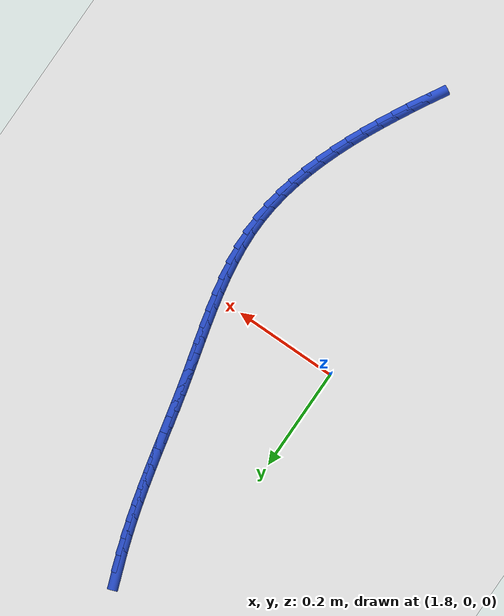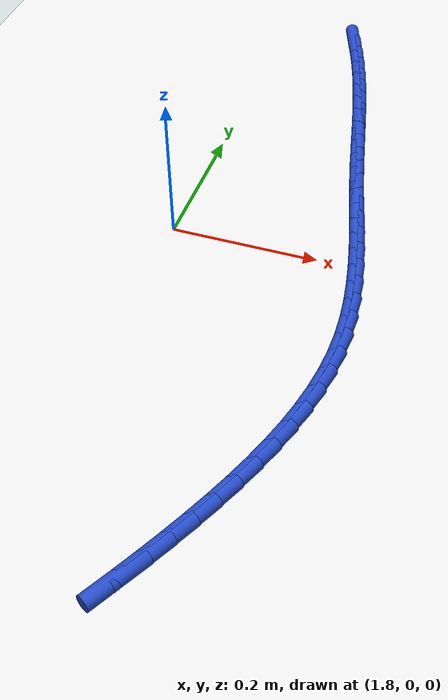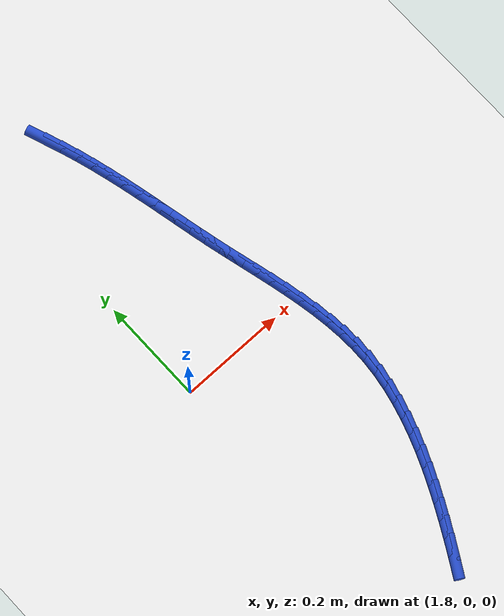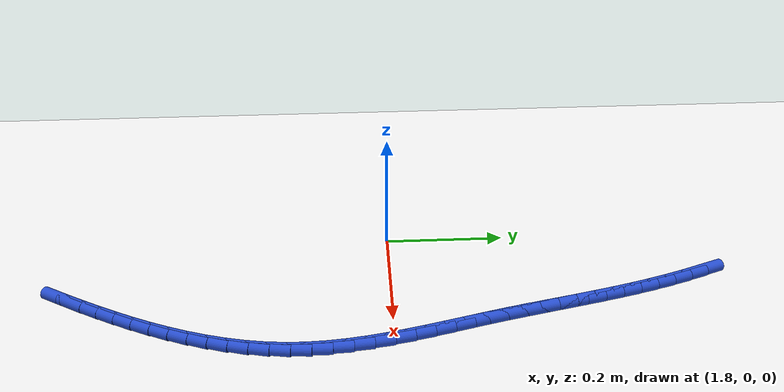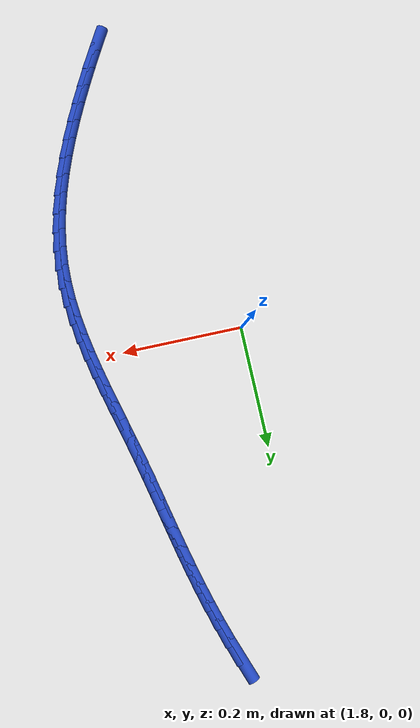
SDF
<sdf version="1.6">
 <world name="default">
  <model name="ground_plane">
   <static>1</static>
   <link name="link">
    <collision name="collision">
     <geometry><plane><normal>0 0 1</normal><size>100 100</size></plane></geometry>
     <surface><friction><ode><mu>100</mu><mu2>50</mu2></ode></friction></surface>
    </collision>
    <visual name="visual">
     <cast_shadows>0</cast_shadows>
     <geometry><plane><normal>0 0 1</normal><size>100 100</size></plane></geometry>
     <material>
      <script><uri>file://media/materials/scripts/gazebo.material</uri><name>Gazebo/WhiteGlow</name></script>
     </material>
    </visual>
   </link>
  </model>
  <model name="line">
   <link name="link_87">
    <pose>1.9185754903380825 0.511030439773325 0.01 0 1.57 -1.2209165980554624</pose>
    <collision name="collision">
     <geometry><cylinder><radius>0.01</radius><length>0.08</length></cylinder></geometry>
    </collision>
    <visual name="visual">
     <material>
      <script><name>Gazebo/Blue</name><uri>file://media/materials/scripts/gazebo.material</uri></script>
     </material>
     <geometry><cylinder><radius>0.01</radius><length>0.08</length></cylinder></geometry>
    </visual>
   </link>
   <link name="link_88">
    <pose>1.9296152009178051 0.48077572218450754 0.01 0 1.57 -1.249173526490332</pose>
    <collision name="collision">
     <geometry><cylinder><radius>0.01</radius><length>0.08</length></cylinder></geometry>
    </collision>
    <visual name="visual">
     <material>
      <script><name>Gazebo/Blue</name><uri>file://media/materials/scripts/gazebo.material</uri></script>
     </material>
     <geometry><cylinder><radius>0.01</radius><length>0.08</length></cylinder></geometry>
    </visual>
   </link>
   <link name="link_89">
    <pose>1.9397411730775054 0.45038486440162623 0.01 0 1.57 -1.2750592778368581</pose>
    <collision name="collision">
     <geometry><cylinder><radius>0.01</radius><length>0.08</length></cylinder></geometry>
    </collision>
    <visual name="visual">
     <material>
      <script><name>Gazebo/Blue</name><uri>file://media/materials/scripts/gazebo.material</uri></script>
     </material>
     <geometry><cylinder><radius>0.01</radius><length>0.08</length></cylinder></geometry>
    </visual>
   </link>
   <link name="link_90">
    <pose>1.9490035571342983 0.41998364892661677 0.01 0 1.57 -1.297681552744192</pose>
    <collision name="collision">
     <geometry><cylinder><radius>0.01</radius><length>0.08</length></cylinder></geometry>
    </collision>
    <visual name="visual">
     <material>
      <script><name>Gazebo/Blue</name><uri>file://media/materials/scripts/gazebo.material</uri></script>
     </material>
     <geometry><cylinder><radius>0.01</radius><length>0.08</length></cylinder></geometry>
    </visual>
   </link>
   <link name="link_91">
    <pose>1.957512859859941 0.38960569256472355 0.01 0 1.57 -1.3163729624620106</pose>
    <collision name="collision">
     <geometry><cylinder><radius>0.01</radius><length>0.08</length></cylinder></geometry>
    </collision>
    <visual name="visual">
     <material>
      <script><name>Gazebo/Blue</name><uri>file://media/materials/scripts/gazebo.material</uri></script>
     </material>
     <geometry><cylinder><radius>0.01</radius><length>0.08</length></cylinder></geometry>
    </visual>
   </link>
   <link name="link_92">
    <pose>1.9654103453046323 0.3592376450484434 0.01 0 1.57 -1.3309617567709409</pose>
    <collision name="collision">
     <geometry><cylinder><radius>0.01</radius><length>0.08</length></cylinder></geometry>
    </collision>
    <visual name="visual">
     <material>
      <script><name>Gazebo/Blue</name><uri>file://media/materials/scripts/gazebo.material</uri></script>
     </material>
     <geometry><cylinder><radius>0.01</radius><length>0.08</length></cylinder></geometry>
    </visual>
   </link>
   <link name="link_93">
    <pose>1.9728375223183114 0.3288657822954265 0.01 0 1.57 -1.3413298237848734</pose>
    <collision name="collision">
     <geometry><cylinder><radius>0.01</radius><length>0.08</length></cylinder></geometry>
    </collision>
    <visual name="visual">
     <material>
      <script><name>Gazebo/Blue</name><uri>file://media/materials/scripts/gazebo.material</uri></script>
     </material>
     <geometry><cylinder><radius>0.01</radius><length>0.08</length></cylinder></geometry>
    </visual>
   </link>
   <link name="link_94">
    <pose>1.979935899750921 0.2984763802233221 0.01 0 1.57 -1.347404151747592</pose>
    <collision name="collision">
     <geometry><cylinder><radius>0.01</radius><length>0.08</length></cylinder></geometry>
    </collision>
    <visual name="visual">
     <material>
      <script><name>Gazebo/Blue</name><uri>file://media/materials/scripts/gazebo.material</uri></script>
     </material>
     <geometry><cylinder><radius>0.01</radius><length>0.08</length></cylinder></geometry>
    </visual>
   </link>
   <link name="link_95">
    <pose>1.9868469864524023 0.2680557147497792 0.01 0 1.57 -1.3491528375715574</pose>
    <collision name="collision">
     <geometry><cylinder><radius>0.01</radius><length>0.08</length></cylinder></geometry>
    </collision>
    <visual name="visual">
     <material>
      <script><name>Gazebo/Blue</name><uri>file://media/materials/scripts/gazebo.material</uri></script>
     </material>
     <geometry><cylinder><radius>0.01</radius><length>0.08</length></cylinder></geometry>
    </visual>
   </link>
   <link name="link_96">
    <pose>1.9937122912726968 0.23759006179244807 0.01 0 1.57 -1.3465822964016443</pose>
    <collision name="collision">
     <geometry><cylinder><radius>0.01</radius><length>0.08</length></cylinder></geometry>
    </collision>
    <visual name="visual">
     <material>
      <script><name>Gazebo/Blue</name><uri>file://media/materials/scripts/gazebo.material</uri></script>
     </material>
     <geometry><cylinder><radius>0.01</radius><length>0.08</length></cylinder></geometry>
    </visual>
   </link>
   <link name="link_97">
    <pose>2.0006733230617466 0.20706569726897783 0.01 0 1.57 -1.339735993326582</pose>
    <collision name="collision">
     <geometry><cylinder><radius>0.01</radius><length>0.08</length></cylinder></geometry>
    </collision>
    <visual name="visual">
     <material>
      <script><name>Gazebo/Blue</name><uri>file://media/materials/scripts/gazebo.material</uri></script>
     </material>
     <geometry><cylinder><radius>0.01</radius><length>0.08</length></cylinder></geometry>
    </visual>
   </link>
   <link name="link_98">
    <pose>2.0078715906694913 0.17646889709701746 0.01 0 1.57 -1.3287985879231476</pose>
    <collision name="collision">
     <geometry><cylinder><radius>0.01</radius><length>0.08</length></cylinder></geometry>
    </collision>
    <visual name="visual">
     <material>
      <script><name>Gazebo/Blue</name><uri>file://media/materials/scripts/gazebo.material</uri></script>
     </material>
     <geometry><cylinder><radius>0.01</radius><length>0.08</length></cylinder></geometry>
    </visual>
   </link>
   <link name="link_99">
    <pose>2.015445158950118 0.1457861953512241 0.01 0 1.57 -1.3186874418227337</pose>
    <collision name="collision">
     <geometry><cylinder><radius>0.01</radius><length>0.08</length></cylinder></geometry>
    </collision>
    <visual name="visual">
     <material>
      <script><name>Gazebo/Blue</name><uri>file://media/materials/scripts/gazebo.material</uri></script>
     </material>
     <geometry><cylinder><radius>0.01</radius><length>0.08</length></cylinder></geometry>
    </visual>
   </link>
   <link name="link_100">
    <pose>2.023371190544731 0.11501618710652213 0.01 0 1.57 -1.3161048319089013</pose>
    <collision name="collision">
     <geometry><cylinder><radius>0.01</radius><length>0.08</length></cylinder></geometry>
    </collision>
    <visual name="visual">
     <material>
      <script><name>Gazebo/Blue</name><uri>file://media/materials/scripts/gazebo.material</uri></script>
     </material>
     <geometry><cylinder><radius>0.01</radius><length>0.08</length></cylinder></geometry>
    </visual>
   </link>
   <link name="link_101">
    <pose>2.031400700800089 0.08417441911628433 0.01 0 1.57 -1.3214706699879761</pose>
    <collision name="collision">
     <geometry><cylinder><radius>0.01</radius><length>0.08</length></cylinder></geometry>
    </collision>
    <visual name="visual">
     <material>
      <script><name>Gazebo/Blue</name><uri>file://media/materials/scripts/gazebo.material</uri></script>
     </material>
     <geometry><cylinder><radius>0.01</radius><length>0.08</length></cylinder></geometry>
    </visual>
   </link>
   <link name="link_102">
    <pose>2.0392677362430924 0.05327771009240454 0.01 0 1.57 -1.334815906238009</pose>
    <collision name="collision">
     <geometry><cylinder><radius>0.01</radius><length>0.08</length></cylinder></geometry>
    </collision>
    <visual name="visual">
     <material>
      <script><name>Gazebo/Blue</name><uri>file://media/materials/scripts/gazebo.material</uri></script>
     </material>
     <geometry><cylinder><radius>0.01</radius><length>0.08</length></cylinder></geometry>
    </visual>
   </link>
   <link name="link_103">
    <pose>2.046706343400644 0.022342878746775752 0.01 0 1.57 -1.356284384202719</pose>
    <collision name="collision">
     <geometry><cylinder><radius>0.01</radius><length>0.08</length></cylinder></geometry>
    </collision>
    <visual name="visual">
     <material>
      <script><name>Gazebo/Blue</name><uri>file://media/materials/scripts/gazebo.material</uri></script>
     </material>
     <geometry><cylinder><radius>0.01</radius><length>0.08</length></cylinder></geometry>
    </visual>
   </link>
   <link name="link_104">
    <pose>2.053450568799646 -0.008613256208708796 0.01 0 1.57 -1.3861107573988305</pose>
    <collision name="collision">
     <geometry><cylinder><radius>0.01</radius><length>0.08</length></cylinder></geometry>
    </collision>
    <visual name="visual">
     <material>
      <script><name>Gazebo/Blue</name><uri>file://media/materials/scripts/gazebo.material</uri></script>
     </material>
     <geometry><cylinder><radius>0.01</radius><length>0.08</length></cylinder></geometry>
    </visual>
   </link>
   <link name="link_105">
    <pose>2.059234458967 -0.03957387606215587 0.01 0 1.57 -1.4245821960362615</pose>
    <collision name="collision">
     <geometry><cylinder><radius>0.01</radius><length>0.08</length></cylinder></geometry>
    </collision>
    <visual name="visual">
     <material>
      <script><name>Gazebo/Blue</name><uri>file://media/materials/scripts/gazebo.material</uri></script>
     </material>
     <geometry><cylinder><radius>0.01</radius><length>0.08</length></cylinder></geometry>
    </visual>
   </link>
   <link name="link_106">
    <pose>2.063792060429608 -0.07052216210167297 0.01 0 1.57 -1.4719780663266766</pose>
    <collision name="collision">
     <geometry><cylinder><radius>0.01</radius><length>0.08</length></cylinder></geometry>
    </collision>
    <visual name="visual">
     <material>
      <script><name>Gazebo/Blue</name><uri>file://media/materials/scripts/gazebo.material</uri></script>
     </material>
     <geometry><cylinder><radius>0.01</radius><length>0.08</length></cylinder></geometry>
    </visual>
   </link>
   <link name="link_107">
    <pose>2.0668574197143714 -0.10144129561536538 0.01 0 1.57 -1.5284817960814034</pose>
    <collision name="collision">
     <geometry><cylinder><radius>0.01</radius><length>0.08</length></cylinder></geometry>
    </collision>
    <visual name="visual">
     <material>
      <script><name>Gazebo/Blue</name><uri>file://media/materials/scripts/gazebo.material</uri></script>
     </material>
     <geometry><cylinder><radius>0.01</radius><length>0.08</length></cylinder></geometry>
    </visual>
   </link>
   <link name="link_108">
    <pose>2.068164583348193 -0.1323144578913406 0.01 0 1.57 1.5475611515386407</pose>
    <collision name="collision">
     <geometry><cylinder><radius>0.01</radius><length>0.08</length></cylinder></geometry>
    </collision>
    <visual name="visual">
     <material>
      <script><name>Gazebo/Blue</name><uri>file://media/materials/scripts/gazebo.material</uri></script>
     </material>
     <geometry><cylinder><radius>0.01</radius><length>0.08</length></cylinder></geometry>
    </visual>
   </link>
   <link name="link_109">
    <pose>2.0674485708592947 -0.16312479714380793 0.01 0 1.57 1.477697773774326</pose>
    <collision name="collision">
     <geometry><cylinder><radius>0.01</radius><length>0.08</length></cylinder></geometry>
    </collision>
    <visual name="visual">
     <material>
      <script><name>Gazebo/Blue</name><uri>file://media/materials/scripts/gazebo.material</uri></script>
     </material>
     <geometry><cylinder><radius>0.01</radius><length>0.08</length></cylinder></geometry>
    </visual>
   </link>
   <link name="link_110">
    <pose>2.064579725494686 -0.1938508617136755 0.01 0 1.57 1.4127555713214295</pose>
    <collision name="collision">
     <geometry><cylinder><radius>0.01</radius><length>0.08</length></cylinder></geometry>
    </collision>
    <visual name="visual">
     <material>
      <script><name>Gazebo/Blue</name><uri>file://media/materials/scripts/gazebo.material</uri></script>
     </material>
     <geometry><cylinder><radius>0.01</radius><length>0.08</length></cylinder></geometry>
    </visual>
   </link>
   <link name="link_111">
    <pose>2.0597012457087156 -0.22446192514956395 0.01 0 1.57 1.3539332523204042</pose>
    <collision name="collision">
     <geometry><cylinder><radius>0.01</radius><length>0.08</length></cylinder></geometry>
    </collision>
    <visual name="visual">
     <material>
      <script><name>Gazebo/Blue</name><uri>file://media/materials/scripts/gazebo.material</uri></script>
     </material>
     <geometry><cylinder><radius>0.01</radius><length>0.08</length></cylinder></geometry>
    </visual>
   </link>
   <link name="link_112">
    <pose>2.0529891269470966 -0.2549261461770151 0.01 0 1.57 1.3011646045232217</pose>
    <collision name="collision">
     <geometry><cylinder><radius>0.01</radius><length>0.08</length></cylinder></geometry>
    </collision>
    <visual name="visual">
     <material>
      <script><name>Gazebo/Blue</name><uri>file://media/materials/scripts/gazebo.material</uri></script>
     </material>
     <geometry><cylinder><radius>0.01</radius><length>0.08</length></cylinder></geometry>
    </visual>
   </link>
   <link name="link_113">
    <pose>2.0446193646555413 -0.2852116835215684 0.01 0 1.57 1.2542495598212193</pose>
    <collision name="collision">
     <geometry><cylinder><radius>0.01</radius><length>0.08</length></cylinder></geometry>
    </collision>
    <visual name="visual">
     <material>
      <script><name>Gazebo/Blue</name><uri>file://media/materials/scripts/gazebo.material</uri></script>
     </material>
     <geometry><cylinder><radius>0.01</radius><length>0.08</length></cylinder></geometry>
    </visual>
   </link>
   <link name="link_114">
    <pose>2.03476795427976 -0.31528669590876574 0.01 0 1.57 1.2129128508659113</pose>
    <collision name="collision">
     <geometry><cylinder><radius>0.01</radius><length>0.08</length></cylinder></geometry>
    </collision>
    <visual name="visual">
     <material>
      <script><name>Gazebo/Blue</name><uri>file://media/materials/scripts/gazebo.material</uri></script>
     </material>
     <geometry><cylinder><radius>0.01</radius><length>0.08</length></cylinder></geometry>
    </visual>
   </link>
   <link name="link_115">
    <pose>2.0236108912654642 -0.34511934206414785 0.01 0 1.57 1.1768500069580403</pose>
    <collision name="collision">
     <geometry><cylinder><radius>0.01</radius><length>0.08</length></cylinder></geometry>
    </collision>
    <visual name="visual">
     <material>
      <script><name>Gazebo/Blue</name><uri>file://media/materials/scripts/gazebo.material</uri></script>
     </material>
     <geometry><cylinder><radius>0.01</radius><length>0.08</length></cylinder></geometry>
    </visual>
   </link>
   <link name="link_116">
    <pose>2.011324171058368 -0.374677780713256 0.01 0 1.57 1.1457610554125939</pose>
    <collision name="collision">
     <geometry><cylinder><radius>0.01</radius><length>0.08</length></cylinder></geometry>
    </collision>
    <visual name="visual">
     <material>
      <script><name>Gazebo/Blue</name><uri>file://media/materials/scripts/gazebo.material</uri></script>
     </material>
     <geometry><cylinder><radius>0.01</radius><length>0.08</length></cylinder></geometry>
    </visual>
   </link>
   <link name="link_117">
    <pose>1.9980837891041814 -0.4039301705816311 0.01 0 1.57 1.1193741267047883</pose>
    <collision name="collision">
     <geometry><cylinder><radius>0.01</radius><length>0.08</length></cylinder></geometry>
    </collision>
    <visual name="visual">
     <material>
      <script><name>Gazebo/Blue</name><uri>file://media/materials/scripts/gazebo.material</uri></script>
     </material>
     <geometry><cylinder><radius>0.01</radius><length>0.08</length></cylinder></geometry>
    </visual>
   </link>
   <link name="link_118">
    <pose>1.9840657408486169 -0.4328446703948142 0.01 0 1.57 1.0974617115698353</pose>
    <collision name="collision">
     <geometry><cylinder><radius>0.01</radius><length>0.08</length></cylinder></geometry>
    </collision>
    <visual name="visual">
     <material>
      <script><name>Gazebo/Blue</name><uri>file://media/materials/scripts/gazebo.material</uri></script>
     </material>
     <geometry><cylinder><radius>0.01</radius><length>0.08</length></cylinder></geometry>
    </visual>
   </link>
   <link name="link_119">
    <pose>1.9694460217373855 -0.4613894388783468 0.01 0 1.57 1.0797879620427073</pose>
    <collision name="collision">
     <geometry><cylinder><radius>0.01</radius><length>0.08</length></cylinder></geometry>
    </collision>
    <visual name="visual">
     <material>
      <script><name>Gazebo/Blue</name><uri>file://media/materials/scripts/gazebo.material</uri></script>
     </material>
     <geometry><cylinder><radius>0.01</radius><length>0.08</length></cylinder></geometry>
    </visual>
   </link>
   <link name="link_120">
    <pose>1.9543978161184434 -0.4895335446342012 0.01 0 1.57 1.0644221068436583</pose>
    <collision name="collision">
     <geometry><cylinder><radius>0.01</radius><length>0.08</length></cylinder></geometry>
    </collision>
    <visual name="visual">
     <material>
      <script><name>Gazebo/Blue</name><uri>file://media/materials/scripts/gazebo.material</uri></script>
     </material>
     <geometry><cylinder><radius>0.01</radius><length>0.08</length></cylinder></geometry>
    </visual>
   </link>
   <link name="link_121">
    <pose>1.9390137759899109 -0.517272122411282 0.01 0 1.57 1.0493147937496303</pose>
    <collision name="collision">
     <geometry><cylinder><radius>0.01</radius><length>0.08</length></cylinder></geometry>
    </collision>
    <visual name="visual">
     <material>
      <script><name>Gazebo/Blue</name><uri>file://media/materials/scripts/gazebo.material</uri></script>
     </material>
     <geometry><cylinder><radius>0.01</radius><length>0.08</length></cylinder></geometry>
    </visual>
   </link>
  </model>
 </world>
</sdf>
